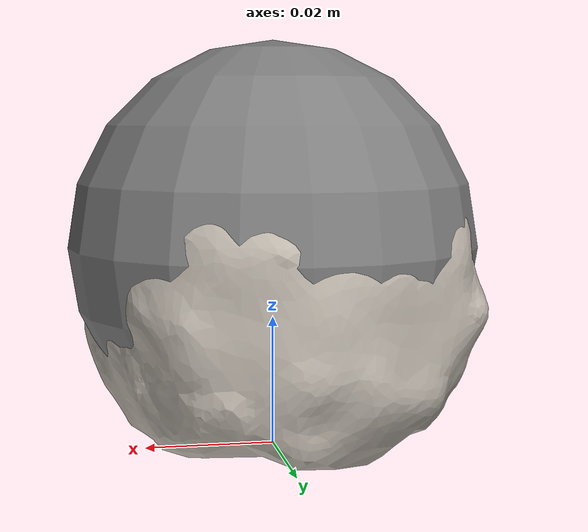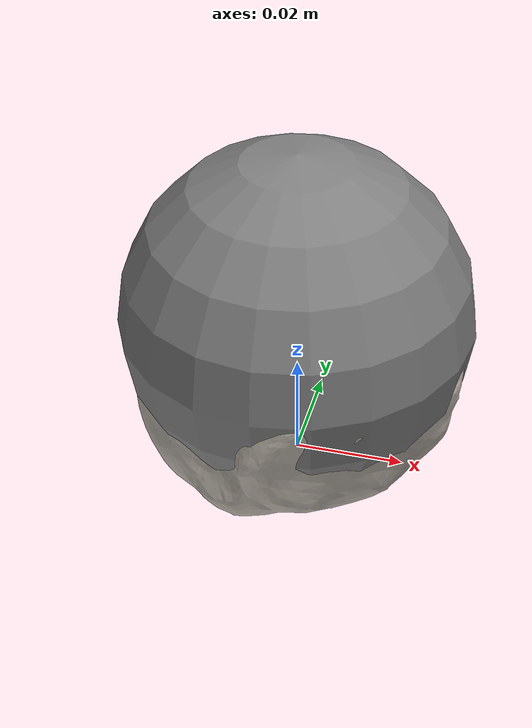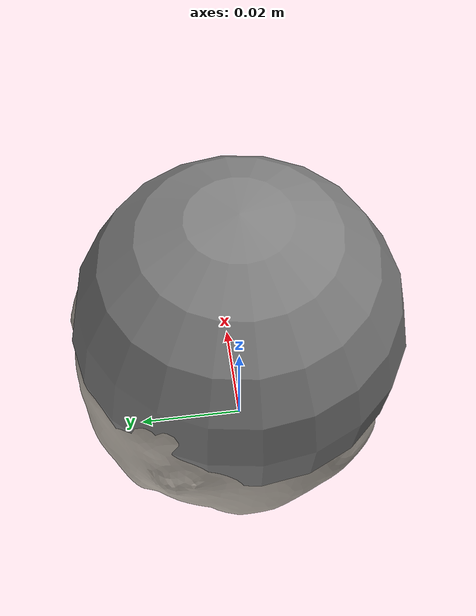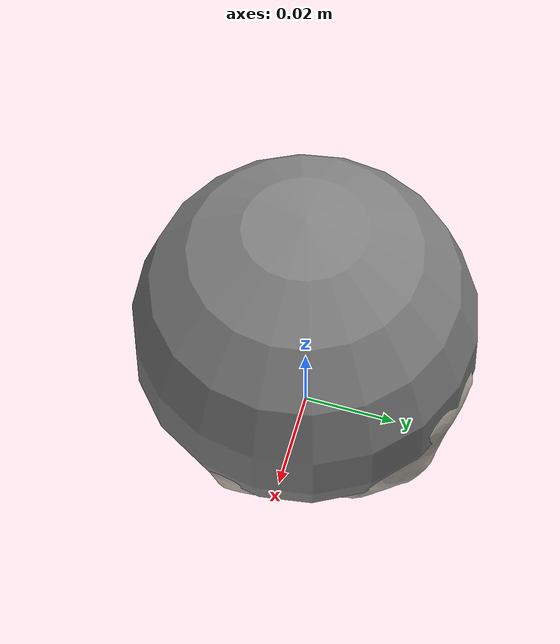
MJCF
<mujoco model="plum">
  <asset>
    <texture type="2d" name="plum_tex" file="Texture.png"/>
    <material name="plum_mat" texture="plum_tex" specular="0.3" shininess="0.1"/>
    <mesh name="plum_vis" file="plum_libero.obj" scale="1 1 1"/>
  </asset>
  <worldbody>
    <body>
      <body name="object">
        <geom type="mesh" mesh="plum_vis" material="plum_mat" group="1" contype="0" conaffinity="0"/>
        <geom name="plum_collision" type="sphere" size="0.03136" pos="0 0 0.03136" group="0" density="100" friction="0.95 0.3 0.1" solimp="0.998 0.998 0.001" solref="0.001 1"/>
      </body>
      <site rgba="0 0 0 0" size="0.005" pos="0 0 0" name="bottom_site"/>
      <site rgba="0 0 0 0" size="0.005" pos="0 0 0.04988" name="top_site"/>
      <site rgba="0 0 0 0" size="0.005" pos="0.03136 0 0" name="horizontal_radius_site"/>
    </body>
  </worldbody>
</mujoco>
